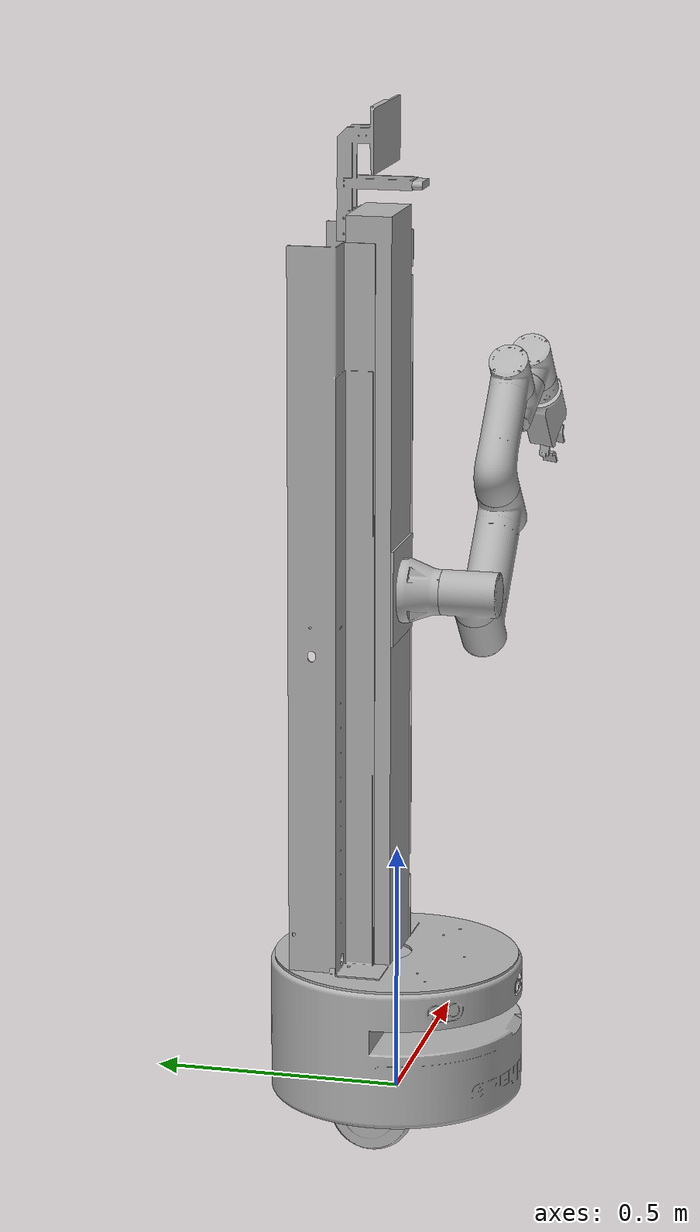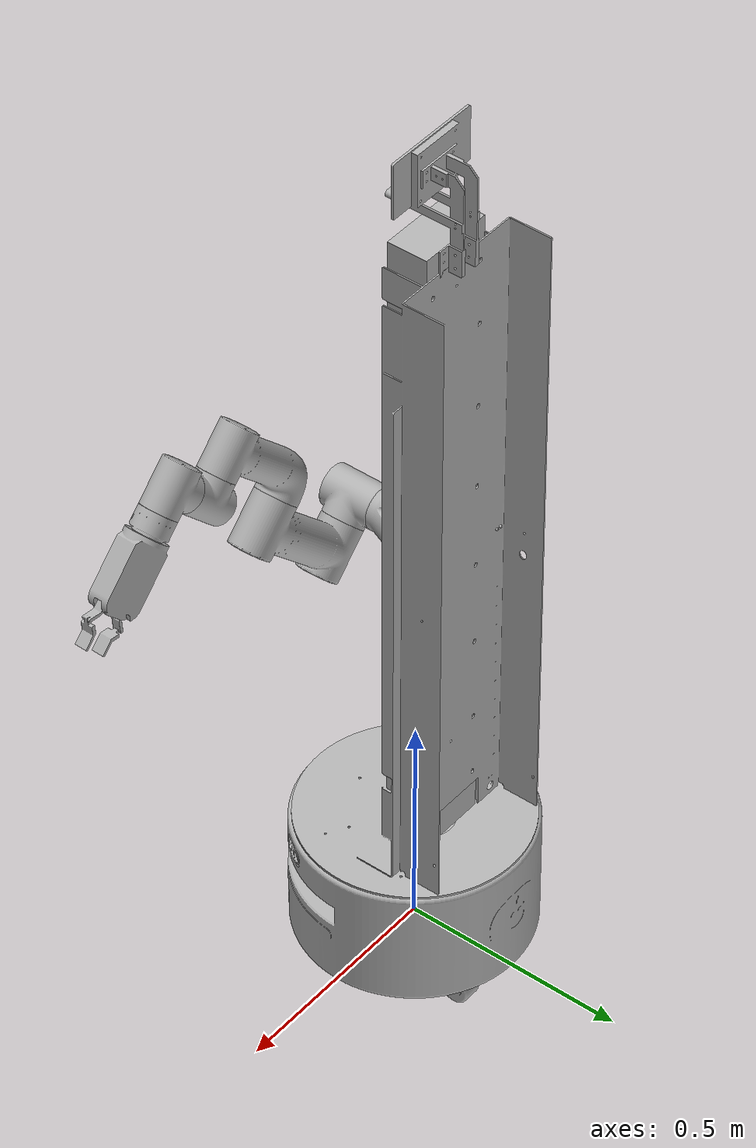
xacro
<?xml version="1.0" ?>
<robot name="r1d1"
  xmlns:xacro="http://www.ros.org/wiki/xacro">

  <xacro:include filename="$(find r1d1_description)/urdf/materials.xacro" />
  <xacro:include filename="$(find r1d1_description)/urdf/r1d1.trans" />
  <xacro:include filename="$(find r1d1_description)/urdf/r1d1.gazebo" />
  <xacro:include filename="$(find r1d1_description)/urdf/rgbd_camera.xacro" />
  <link name="base_link">
    <inertial>
      <origin xyz="1.1547257273897802e-06 -0.007635347278315616 0.15138662427903304" rpy="0 0 0"/>
      <mass value="36.898914712235424"/>
      <inertia ixx="0.87793" iyy="0.993842" izz="1.325469" ixy="2.9e-05" iyz="-0.00262" ixz="9e-06"/>
    </inertial>
    <visual>
      <origin xyz="0 0 0" rpy="0 0 0"/>
      <geometry>
        <mesh filename="file://$(find r1d1_description)/meshes/base_link.stl" scale="0.001 0.001 0.001"/>
      </geometry>
      <material name="silver"/>
    </visual>
    <collision>
      <origin xyz="0 0 0" rpy="0 0 0"/>
      <geometry>
        <mesh filename="file://$(find r1d1_description)/meshes/base_link.stl" scale="0.001 0.001 0.001"/>
      </geometry>
    </collision>
  </link>

  <link name="left_wheel_1">
    <inertial>
      <origin xyz="0.03933261352596262 -3.102141997377017e-07 3.896188927043909e-15" rpy="0 0 0"/>
      <mass value="1.2020197871482743"/>
      <inertia ixx="0.003741" iyy="0.002176" izz="0.002176" ixy="-0.0" iyz="0.0" ixz="0.0"/>
    </inertial>
    <visual>
      <origin xyz="-0.125905 -0.011214 -0.01" rpy="0 0 0"/>
      <geometry>
        <mesh filename="file://$(find r1d1_description)/meshes/left_wheel_1.stl" scale="0.001 0.001 0.001"/>
      </geometry>
      <material name="silver"/>
    </visual>
    <collision>
      <origin xyz="-0.125905 -0.011214 -0.01" rpy="0 0 0"/>
      <geometry>
        <mesh filename="file://$(find r1d1_description)/meshes/left_wheel_1.stl" scale="0.001 0.001 0.001"/>
      </geometry>
    </collision>
  </link>

  <link name="right_wheel_1">
    <inertial>
      <origin xyz="-0.03933261352596262 1.2614637535327683e-06 3.896188927043909e-15" rpy="0 0 0"/>
      <mass value="1.2020197871482743"/>
      <inertia ixx="0.003741" iyy="0.002176" izz="0.002176" ixy="-0.0" iyz="-0.0" ixz="-0.0"/>
    </inertial>
    <visual>
      <origin xyz="0.125905 -0.011214 -0.01" rpy="0 0 0"/>
      <geometry>
        <mesh filename="file://$(find r1d1_description)/meshes/right_wheel_1.stl" scale="0.001 0.001 0.001"/>
      </geometry>
      <material name="silver"/>
    </visual>
    <collision>
      <origin xyz="0.125905 -0.011214 -0.01" rpy="0 0 0"/>
      <geometry>
        <mesh filename="file://$(find r1d1_description)/meshes/right_wheel_1.stl" scale="0.001 0.001 0.001"/>
      </geometry>
    </collision>
  </link>

  <link name="caster_1_1">
    <inertial>
      <origin xyz="0.0749999955448851 0.17500002391840322 -0.037229533269406326" rpy="0 0 0"/>
      <mass value="0.18492935556768103"/>
      <inertia ixx="0.000111" iyy="9.7e-05" izz="8.2e-05" ixy="0.0" iyz="-0.0" ixz="0.0"/>
    </inertial>
    <visual>
      <origin xyz="-0.0 -0.0 -0.0" rpy="0 0 0"/>
      <geometry>
        <mesh filename="file://$(find r1d1_description)/meshes/caster_1_1.stl" scale="0.001 0.001 0.001"/>
      </geometry>
      <material name="silver"/>
    </visual>
    <collision>
      <origin xyz="-0.0 -0.0 -0.0" rpy="0 0 0"/>
      <geometry>
        <mesh filename="file://$(find r1d1_description)/meshes/caster_1_1.stl" scale="0.001 0.001 0.001"/>
      </geometry>
    </collision>
  </link>

  <link name="mount_v1_1">
    <inertial>
      <origin xyz="0.004699834778461813 0.06797243215558421 0.5691408369250166" rpy="0 0 0"/>
      <mass value="37.46152841680288"/>
      <inertia ixx="7.91068" iyy="8.256966" izz="0.734564" ixy="0.009948" iyz="-0.366828" ixz="-0.022667"/>
    </inertial>
    <visual>
      <origin xyz="-0.0 -0.0 -0.28" rpy="0 0 0"/>
      <geometry>
        <mesh filename="file://$(find r1d1_description)/meshes/mount_v1_1.stl" scale="0.001 0.001 0.001"/>
      </geometry>
      <material name="silver"/>
    </visual>
    <collision>
      <origin xyz="-0.0 -0.0 -0.28" rpy="0 0 0"/>
      <geometry>
        <mesh filename="file://$(find r1d1_description)/meshes/mount_v1_1.stl" scale="0.001 0.001 0.001"/>
      </geometry>
    </collision>
  </link>

  <link name="vertical_v1_1">
    <inertial>
      <origin xyz="0.300276 -0.16840510951680002 -1.74076100000007" rpy="0 0 0"/>
      <mass value="24.32699999999999"/>
      <inertia ixx="4.577733" iyy="4.6199" izz="0.075008" ixy="-0.0" iyz="0.0" ixz="-0.0"/>
    </inertial>
    <visual>
      <origin xyz="0.300276 -0.208406 -2.775761" rpy="0 0 0"/>
      <geometry>
        <mesh filename="file://$(find r1d1_description)/meshes/vertical_v1_1.stl" scale="0.001 0.001 0.001"/>
      </geometry>
      <material name="silver"/>
    </visual>
    <collision>
      <origin xyz="0.300276 -0.208406 -2.775761" rpy="0 0 0"/>
      <geometry>
        <mesh filename="file://$(find r1d1_description)/meshes/vertical_v1_1.stl" scale="0.001 0.001 0.001"/>
      </geometry>
    </collision>
  </link>

  <link name="gripper_finger_1">
    <inertial>
      <origin xyz="-1.2887005800870863 -0.07296498486252255 0.3041595690014297" rpy="0 0 0"/>
      <mass value="0.016384204166531253"/>
      <inertia ixx="7e-06" iyy="1e-05" izz="5e-06" ixy="-0.0" iyz="0.0" ixz="4e-06"/>
    </inertial>
    <visual>
      <origin xyz="-2.00986 0.095929 -0.899244" rpy="0 0 0"/>
      <geometry>
        <mesh filename="file://$(find r1d1_description)/meshes/gripper_finger_1.stl" scale="0.001 0.001 0.001"/>
      </geometry>
      <material name="silver"/>
    </visual>
    <collision>
      <origin xyz="-2.00986 0.095929 -0.899244" rpy="0 0 0"/>
      <geometry>
        <mesh filename="file://$(find r1d1_description)/meshes/gripper_finger_1.stl" scale="0.001 0.001 0.001"/>
      </geometry>
    </collision>
  </link>

  <link name="gripper_finger2_1">
    <inertial>
      <origin xyz="-1.3007475016955818 -0.06995542399105785 0.2920686540778593" rpy="0 0 0"/>
      <mass value="0.016384204166531253"/>
      <inertia ixx="5e-06" iyy="1e-05" izz="7e-06" ixy="0.0" iyz="-0.0" ixz="4e-06"/>
    </inertial>
    <visual>
      <origin xyz="-2.00986 0.095929 -0.899244" rpy="0 0 0"/>
      <geometry>
        <mesh filename="file://$(find r1d1_description)/meshes/gripper_finger2_1.stl" scale="0.001 0.001 0.001"/>
      </geometry>
      <material name="silver"/>
    </visual>
    <collision>
      <origin xyz="-2.00986 0.095929 -0.899244" rpy="0 0 0"/>
      <geometry>
        <mesh filename="file://$(find r1d1_description)/meshes/gripper_finger2_1.stl" scale="0.001 0.001 0.001"/>
      </geometry>
    </collision>
  </link>

  <link name="screen_v1_1">
    <inertial>
      <origin xyz="1.84011819724741e-11 -0.03889295266081586 0.11598843171162043" rpy="0 0 0"/>
      <mass value="1.3238858059375562"/>
      <inertia ixx="0.00685" iyy="0.008161" izz="0.003561" ixy="0.0" iyz="0.001577" ixz="0.0"/>
    </inertial>
    <visual>
      <origin xyz="-0.0 -0.085001 -1.785" rpy="0 0 0"/>
      <geometry>
        <mesh filename="file://$(find r1d1_description)/meshes/screen_v1_1.stl" scale="0.001 0.001 0.001"/>
      </geometry>
      <material name="silver"/>
    </visual>
    <collision>
      <origin xyz="-0.0 -0.085001 -1.785" rpy="0 0 0"/>
      <geometry>
        <mesh filename="file://$(find r1d1_description)/meshes/screen_v1_1.stl" scale="0.001 0.001 0.001"/>
      </geometry>
    </collision>
  </link>

  <link name="slider_1">
    <inertial>
      <origin xyz="-5.902504556725109e-18 -0.002500109516799993 -6.994405055138486e-14" rpy="0 0 0"/>
      <mass value="0.43604999999999994"/>
      <inertia ixx="0.001313" iyy="0.002362" izz="0.001051" ixy="0.0" iyz="0.0" ixz="-0.0"/>
    </inertial>
    <visual>
      <origin xyz="0.0 0.004999 -1.035" rpy="0 0 0"/>
      <geometry>
        <mesh filename="file://$(find r1d1_description)/meshes/slider_1.stl" scale="0.001 0.001 0.001"/>
      </geometry>
      <material name="silver"/>
    </visual>
    <collision>
      <origin xyz="0.0 0.004999 -1.035" rpy="0 0 0"/>
      <geometry>
        <mesh filename="file://$(find r1d1_description)/meshes/slider_1.stl" scale="0.001 0.001 0.001"/>
      </geometry>
    </collision>
  </link>

  <link name="arm_c1_1">
    <inertial>
      <origin xyz="-2.78263793284472e-05 -0.032527409110111094 -0.0006654684875286865" rpy="0 0 0"/>
      <mass value="0.3077654114507175"/>
      <inertia ixx="0.000539" iyy="0.000776" izz="0.000548" ixy="0.0" iyz="6e-06" ixz="0.0"/>
    </inertial>
    <visual>
      <origin xyz="0.0 0.009999 -1.035" rpy="0 0 0"/>
      <geometry>
        <mesh filename="file://$(find r1d1_description)/meshes/arm_c1_1.stl" scale="0.001 0.001 0.001"/>
      </geometry>
      <material name="silver"/>
    </visual>
    <collision>
      <origin xyz="0.0 0.009999 -1.035" rpy="0 0 0"/>
      <geometry>
        <mesh filename="file://$(find r1d1_description)/meshes/arm_c1_1.stl" scale="0.001 0.001 0.001"/>
      </geometry>
    </collision>
  </link>

  <link name="amr_c2_1">
    <inertial>
      <origin xyz="0.0017122003101182226 -0.05521343954562406 -0.0017056690936951835" rpy="0 0 0"/>
      <mass value="0.8336850329541245"/>
      <inertia ixx="0.001385" iyy="0.000909" izz="0.001385" ixy="9e-06" iyz="-9e-06" ixz="1.6e-05"/>
    </inertial>
    <visual>
      <origin xyz="-0.0 0.089799 -1.035" rpy="0 0 0"/>
      <geometry>
        <mesh filename="file://$(find r1d1_description)/meshes/amr_c2_1.stl" scale="0.001 0.001 0.001"/>
      </geometry>
      <material name="silver"/>
    </visual>
    <collision>
      <origin xyz="-0.0 0.089799 -1.035" rpy="0 0 0"/>
      <geometry>
        <mesh filename="file://$(find r1d1_description)/meshes/amr_c2_1.stl" scale="0.001 0.001 0.001"/>
      </geometry>
    </collision>
  </link>

  <link name="arm_c4_1">
    <inertial>
      <origin xyz="0.055635248736101484 -3.323298905510974e-08 0.12568017736494497" rpy="0 0 0"/>
      <mass value="1.9148915468217087"/>
      <inertia ixx="0.010371" iyy="0.017911" izz="0.00916" ixy="-0.0" iyz="-0.0" ixz="-0.007787"/>
    </inertial>
    <visual>
      <origin xyz="-0.23574 0.149799 -1.195377" rpy="0 0 0"/>
      <geometry>
        <mesh filename="file://$(find r1d1_description)/meshes/arm_c4_1.stl" scale="0.001 0.001 0.001"/>
      </geometry>
      <material name="silver"/>
    </visual>
    <collision>
      <origin xyz="-0.23574 0.149799 -1.195377" rpy="0 0 0"/>
      <geometry>
        <mesh filename="file://$(find r1d1_description)/meshes/arm_c4_1.stl" scale="0.001 0.001 0.001"/>
      </geometry>
    </collision>
  </link>

  <link name="arm_c5_1">
    <inertial>
      <origin xyz="0.027931367316718747 0.001141639371120412 -0.03694297864771845" rpy="0 0 0"/>
      <mass value="0.7917902286710067"/>
      <inertia ixx="0.000962" iyy="0.001203" izz="0.00093" ixy="6.1e-05" iyz="6.5e-05" ixz="-0.00023"/>
    </inertial>
    <visual>
      <origin xyz="-0.404577 0.149799 -1.365964" rpy="0 0 0"/>
      <geometry>
        <mesh filename="file://$(find r1d1_description)/meshes/arm_c5_1.stl" scale="0.001 0.001 0.001"/>
      </geometry>
      <material name="silver"/>
    </visual>
    <collision>
      <origin xyz="-0.404577 0.149799 -1.365964" rpy="0 0 0"/>
      <geometry>
        <mesh filename="file://$(find r1d1_description)/meshes/arm_c5_1.stl" scale="0.001 0.001 0.001"/>
      </geometry>
    </collision>
  </link>

  <link name="arm_c6_1">
    <inertial>
      <origin xyz="0.03182669751725131 -0.007873936279006344 0.03129187486567342" rpy="0 0 0"/>
      <mass value="0.6685877298515001"/>
      <inertia ixx="0.00076" iyy="0.000958" izz="0.000763" ixy="5e-06" iyz="5e-06" ixz="0.000157"/>
    </inertial>
    <visual>
      <origin xyz="-0.475637 0.158915 -1.368144" rpy="0 0 0"/>
      <geometry>
        <mesh filename="file://$(find r1d1_description)/meshes/arm_c6_1.stl" scale="0.001 0.001 0.001"/>
      </geometry>
      <material name="silver"/>
    </visual>
    <collision>
      <origin xyz="-0.475637 0.158915 -1.368144" rpy="0 0 0"/>
      <geometry>
        <mesh filename="file://$(find r1d1_description)/meshes/arm_c6_1.stl" scale="0.001 0.001 0.001"/>
      </geometry>
    </collision>
  </link>

  <link name="amr_c3_1">
    <inertial>
      <origin xyz="0.13969122062090347 -8.388348304855242e-08 0.05844792124625198" rpy="0 0 0"/>
      <mass value="2.940490372828695"/>
      <inertia ixx="0.021212" iyy="0.039248" izz="0.021088" ixy="0.0" iyz="0.0" ixz="-0.01706"/>
    </inertial>
    <visual>
      <origin xyz="-0.038112 0.149799 -0.997027" rpy="0 0 0"/>
      <geometry>
        <mesh filename="file://$(find r1d1_description)/meshes/amr_c3_1.stl" scale="0.001 0.001 0.001"/>
      </geometry>
      <material name="silver"/>
    </visual>
    <collision>
      <origin xyz="-0.038112 0.149799 -0.997027" rpy="0 0 0"/>
      <geometry>
        <mesh filename="file://$(find r1d1_description)/meshes/amr_c3_1.stl" scale="0.001 0.001 0.001"/>
      </geometry>
    </collision>
  </link>

  <link name="arm_c7_1">
    <inertial>
      <origin xyz="0.013946843385206464 3.245700232556992e-05 -0.01379788517027336" rpy="0 0 0"/>
      <mass value="0.21151566499231975"/>
      <inertia ixx="0.00014" iyy="0.000113" izz="0.00014" ixy="-0.0" iyz="-0.0" ixz="-2.7e-05"/>
    </inertial>
    <visual>
      <origin xyz="-0.549936 0.167389 -1.361957" rpy="0 0 0"/>
      <geometry>
        <mesh filename="file://$(find r1d1_description)/meshes/arm_c7_1.stl" scale="0.001 0.001 0.001"/>
      </geometry>
      <material name="silver"/>
    </visual>
    <collision>
      <origin xyz="-0.549936 0.167389 -1.361957" rpy="0 0 0"/>
      <geometry>
        <mesh filename="file://$(find r1d1_description)/meshes/arm_c7_1.stl" scale="0.001 0.001 0.001"/>
      </geometry>
    </collision>
  </link>

  <link name="gripper_base_1">
    <inertial>
      <origin xyz="0.050859725463711425 -2.1799271313072133e-07 -0.0506748564046926" rpy="0 0 0"/>
      <mass value="0.7474580686995151"/>
      <inertia ixx="0.001142" iyy="0.00191" izz="0.001145" ixy="4.3e-05" iyz="4.4e-05" ixz="0.000429"/>
    </inertial>
    <visual>
      <origin xyz="-0.580397 0.167389 -1.331607" rpy="0 0 0"/>
      <geometry>
        <mesh filename="file://$(find r1d1_description)/meshes/gripper_base_1.stl" scale="0.001 0.001 0.001"/>
      </geometry>
      <material name="silver"/>
    </visual>
    <collision>
      <origin xyz="-0.580397 0.167389 -1.331607" rpy="0 0 0"/>
      <geometry>
        <mesh filename="file://$(find r1d1_description)/meshes/gripper_base_1.stl" scale="0.001 0.001 0.001"/>
      </geometry>
    </collision>
  </link>

  <link name="lidar_1">
    <inertial>
      <origin xyz="-3.8657673471382324e-17 -4.13193513695842e-07 0.015000000000000013" rpy="0 0 0"/>
      <mass value="0.6616194128460102"/>
      <inertia ixx="0.00048" iyy="0.00048" izz="0.00086" ixy="0.0" iyz="-0.0" ixz="0.0"/>
    </inertial>
    <visual>
      <origin xyz="0.0 0.123483 -0.155" rpy="0 0 0"/>
      <geometry>
        <mesh filename="file://$(find r1d1_description)/meshes/lidar_1.stl" scale="0.001 0.001 0.001"/>
      </geometry>
      <material name="silver"/>
    </visual>
    <collision>
      <origin xyz="0.0 0.123483 -0.155" rpy="0 0 0"/>
      <geometry>
        <mesh filename="file://$(find r1d1_description)/meshes/lidar_1.stl" scale="0.001 0.001 0.001"/>
      </geometry>
    </collision>
  </link>

  <joint name="left_wheel_joint" type="continuous">
    <origin xyz="0.125905 0.011214 0.01" rpy="0 0 0"/>
    <parent link="base_link"/>
    <child link="left_wheel_1"/>
    <axis xyz="-1.0 0.0 0.0"/>
  </joint>

  <joint name="right_wheel_joint" type="continuous">
    <origin xyz="-0.125905 0.011214 0.01" rpy="0 0 0"/>
    <parent link="base_link"/>
    <child link="right_wheel_1"/>
    <axis xyz="1.0 -0.0 0.0"/>
  </joint>

  <joint name="Rigid 7" type="fixed">
    <origin xyz="0.0 0.0 0.0" rpy="0 0 0"/>
    <parent link="base_link"/>
    <child link="caster_1_1"/>
  </joint>

  <joint name="Rigid 21" type="fixed">
    <origin xyz="0.0 0.0 0.28" rpy="0 0 0"/>
    <parent link="base_link"/>
    <child link="mount_v1_1"/>
  </joint>

  <joint name="Rigid 23" type="fixed">
    <origin xyz="-0.300276 0.208406 2.495761" rpy="0 0 0"/>
    <parent link="mount_v1_1"/>
    <child link="vertical_v1_1"/>
  </joint>

  <joint name="Slider 29" type="prismatic">
    <origin xyz="1.429463 0.07146 -0.432363" rpy="0 0 0"/>
    <parent link="gripper_base_1"/>
    <child link="gripper_finger_1"/>
    <axis xyz="0.695094 -0.173648 0.697632"/>
    <limit upper="0.045" lower="0.0055" effort="100" velocity="100"/>
  </joint>

  <joint name="Slider 30" type="prismatic">
    <origin xyz="1.429463 0.07146 -0.432363" rpy="0 0 0"/>
    <parent link="gripper_base_1"/>
    <child link="gripper_finger2_1"/>
    <axis xyz="0.695094 -0.173648 0.697632"/>
    <limit upper="-0.0005" lower="-0.04" effort="100" velocity="100"/>
  </joint>

  <joint name="Rigid 31" type="fixed">
    <origin xyz="0.300276 -0.123405 -0.990761" rpy="0 0 0"/>
    <parent link="vertical_v1_1"/>
    <child link="screen_v1_1"/>
  </joint>

  <joint name="Slider 33" type="prismatic">
    <origin xyz="0.300276 -0.213405 -1.740761" rpy="0 0 0"/>
    <parent link="vertical_v1_1"/>
    <child link="slider_1"/>
    <axis xyz="0.0 -0.0 1.0"/>
    <limit upper="0.64" lower="-0.64" effort="100" velocity="100"/>
  </joint>

  <joint name="Rigid 34" type="fixed">
    <origin xyz="0.0 -0.005 0.0" rpy="0 0 0"/>
    <parent link="slider_1"/>
    <child link="arm_c1_1"/>
  </joint>

  <joint name="Revolute 35" type="continuous">
    <origin xyz="0.0 -0.0798 0.0" rpy="0 0 0"/>
    <parent link="arm_c1_1"/>
    <child link="amr_c2_1"/>
    <axis xyz="0.0 -1.0 -0.0"/>
  </joint>

  <joint name="Revolute 38" type="continuous">
    <origin xyz="0.197628 0.0 0.19835" rpy="0 0 0"/>
    <parent link="amr_c3_1"/>
    <child link="arm_c4_1"/>
    <axis xyz="0.708394 0.0 -0.705817"/>
  </joint>

  <joint name="Revolute 39" type="continuous">
    <origin xyz="0.168837 0.0 0.170587" rpy="0 0 0"/>
    <parent link="arm_c4_1"/>
    <child link="arm_c5_1"/>
    <axis xyz="-0.708394 -0.0 0.705817"/>
  </joint>

  <joint name="Revolute 40" type="continuous">
    <origin xyz="0.07106 -0.009116 0.00218" rpy="0 0 0"/>
    <parent link="arm_c5_1"/>
    <child link="arm_c6_1"/>
    <axis xyz="-0.695094 0.173648 -0.697632"/>
  </joint>

  <joint name="Revolute 41" type="continuous">
    <origin xyz="0.038112 -0.06 -0.037973" rpy="0 0 0"/>
    <parent link="amr_c2_1"/>
    <child link="amr_c3_1"/>
    <axis xyz="0.708394 0.0 -0.705817"/>
  </joint>

  <joint name="Revolute 42" type="continuous">
    <origin xyz="0.074299 -0.008474 -0.006187" rpy="0 0 0"/>
    <parent link="arm_c6_1"/>
    <child link="arm_c7_1"/>
    <axis xyz="0.708394 0.0 -0.705817"/>
  </joint>

  <joint name="Rigid 43" type="fixed">
    <origin xyz="0.030461 0.0 -0.03035" rpy="0 0 0"/>
    <parent link="arm_c7_1"/>
    <child link="gripper_base_1"/>
  </joint>

  <joint name="Rigid 46" type="fixed">
    <origin xyz="0.0 -0.123483 0.155" rpy="0 0 0"/>
    <parent link="base_link"/>
    <child link="lidar_1"/>
  </joint>

</robot>

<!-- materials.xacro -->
<robot name="r1d1" xmlns:xacro="http://www.ros.org/wiki/xacro" >

<material name="silver">
  <color rgba="0.700 0.700 0.700 1.000"/>
</material>

</robot>

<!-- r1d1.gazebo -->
<robot name="r1d1"
  xmlns:xacro="http://www.ros.org/wiki/xacro">

  <xacro:property name="body_color" value="Gazebo/Silver" />

  <gazebo reference="base_link">
    <material>${body_color}</material>
    <mu1>0.2</mu1>
    <mu2>0.2</mu2>
    <self_collide>true</self_collide>
    <gravity>true</gravity>
  </gazebo>

  <gazebo reference="left_wheel_1">
    <material>${body_color}</material>
    <mu1>0.2</mu1>
    <mu2>0.2</mu2>
    <self_collide>true</self_collide>
  </gazebo>

  <gazebo reference="right_wheel_1">
    <material>${body_color}</material>
    <mu1>0.2</mu1>
    <mu2>0.2</mu2>
    <self_collide>true</self_collide>
  </gazebo>

  <gazebo reference="caster_1_1">
    <material>${body_color}</material>
    <mu1>0.2</mu1>
    <mu2>0.2</mu2>
    <self_collide>true</self_collide>
  </gazebo>

  <gazebo reference="mount_v1_1">
    <material>${body_color}</material>
    <mu1>0.2</mu1>
    <mu2>0.2</mu2>
    <self_collide>true</self_collide>
  </gazebo>

  <gazebo reference="vertical_v1_1">
    <material>${body_color}</material>
    <mu1>0.2</mu1>
    <mu2>0.2</mu2>
    <self_collide>true</self_collide>
  </gazebo>

  <gazebo reference="gripper_finger_1">
    <material>${body_color}</material>
    <mu1>0.2</mu1>
    <mu2>0.2</mu2>
    <self_collide>true</self_collide>
  </gazebo>

  <gazebo reference="gripper_finger2_1">
    <material>${body_color}</material>
    <mu1>0.2</mu1>
    <mu2>0.2</mu2>
    <self_collide>true</self_collide>
  </gazebo>

  <gazebo reference="screen_v1_1">
    <material>${body_color}</material>
    <mu1>0.2</mu1>
    <mu2>0.2</mu2>
    <self_collide>true</self_collide>
  </gazebo>

  <gazebo reference="slider_1">
    <material>${body_color}</material>
    <mu1>0.2</mu1>
    <mu2>0.2</mu2>
    <self_collide>true</self_collide>
  </gazebo>

  <gazebo reference="arm_c1_1">
    <material>${body_color}</material>
    <mu1>0.2</mu1>
    <mu2>0.2</mu2>
    <self_collide>true</self_collide>
  </gazebo>

  <gazebo reference="amr_c2_1">
    <material>${body_color}</material>
    <mu1>0.2</mu1>
    <mu2>0.2</mu2>
    <self_collide>true</self_collide>
  </gazebo>

  <gazebo reference="arm_c4_1">
    <material>${body_color}</material>
    <mu1>0.2</mu1>
    <mu2>0.2</mu2>
    <self_collide>true</self_collide>
  </gazebo>

  <gazebo reference="arm_c5_1">
    <material>${body_color}</material>
    <mu1>0.2</mu1>
    <mu2>0.2</mu2>
    <self_collide>true</self_collide>
  </gazebo>

  <gazebo reference="arm_c6_1">
    <material>${body_color}</material>
    <mu1>0.2</mu1>
    <mu2>0.2</mu2>
    <self_collide>true</self_collide>
  </gazebo>

  <gazebo reference="amr_c3_1">
    <material>${body_color}</material>
    <mu1>0.2</mu1>
    <mu2>0.2</mu2>
    <self_collide>true</self_collide>
  </gazebo>

  <gazebo reference="arm_c7_1">
    <material>${body_color}</material>
    <mu1>0.2</mu1>
    <mu2>0.2</mu2>
    <self_collide>true</self_collide>
  </gazebo>

  <gazebo reference="gripper_base_1">
    <material>${body_color}</material>
    <mu1>0.2</mu1>
    <mu2>0.2</mu2>
    <self_collide>true</self_collide>
  </gazebo>

  <gazebo reference="camera_1">
    <material>${body_color}</material>
    <mu1>0.2</mu1>
    <mu2>0.2</mu2>
    <self_collide>true</self_collide>
  </gazebo>

  <gazebo reference="lidar_1">
    <material>${body_color}</material>
    <mu1>0.2</mu1>
    <mu2>0.2</mu2>
    <self_collide>true</self_collide>
  </gazebo>

</robot>

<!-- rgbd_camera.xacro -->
<robot xmlns:xacro="http://www.ros.org/wiki/xacro">

  <joint name="Rigid 45" type="revolute">
    <origin xyz="0.0 -0.117 0.0525" rpy="0 0 0"/>
    <parent link="screen_v1_1"/>
    <child link="camera_1"/>
    <axis xyz="0 0 1"/>
    <limit lower="0" upper="0" effort="0" velocity="0"/>
  </joint>

  <link name="camera_1">
    <inertial>
      <origin xyz="6.1791840987637954e-15 -0.01000010951681022 -7.127631818093505e-14" rpy="0 0 0"/>
      <mass value="0.05166258768470149"/>
      <inertia ixx="3e-06" iyy="1.9e-05" izz="1.9e-05" ixy="-0.0" iyz="0.0" ixz="-0.0"/>
    </inertial>
    <visual>
      <origin xyz="-0.0 0.031999 -1.8375" rpy="0 0 0"/>
      <geometry>
        <mesh filename="file://$(find r1d1_description)/meshes/camera_1.stl" scale="0.001 0.001 0.001"/>
      </geometry>
      <material name="silver"/>
    </visual>
    <collision>
      <origin xyz="-0.0 0.031999 -1.8375" rpy="0 0 0"/>
      <geometry>
        <mesh filename="file://$(find r1d1_description)/meshes/camera_1.stl" scale="0.001 0.001 0.001"/>
      </geometry>
    </collision>
  </link>

  <gazebo reference="camera_1">
    <sensor name="rgbd_camera" type="rgbd_camera">
      <!--The pose here is a bit random so need to be adjusted-->
      <pose>-0.0 -1.0 1.5 0 0 -1.5708</pose>
      <camera>
        <horizontal_fov>1.2</horizontal_fov>
        <image>
          <width>640</width>
          <height>480</height>
          <format>BAYER_RGGB8</format>
        </image>
        <clip>
          <near>0.02</near>
          <far>10</far>
        </clip>
      </camera>
      <always_on>1</always_on>
      <!--If running at good RTF then lower the update rate to 30 or so-->
      <update_rate>10000</update_rate>
      <visualize>true</visualize>
      <topic>rgbd_camera</topic>
      <plugin filename="ignition-gazebo-sensors-system" name="gz::sim::systems::Sensors">
        <render_engine>ogre2</render_engine>
      </plugin>
    </sensor>
  </gazebo>

</robot>
